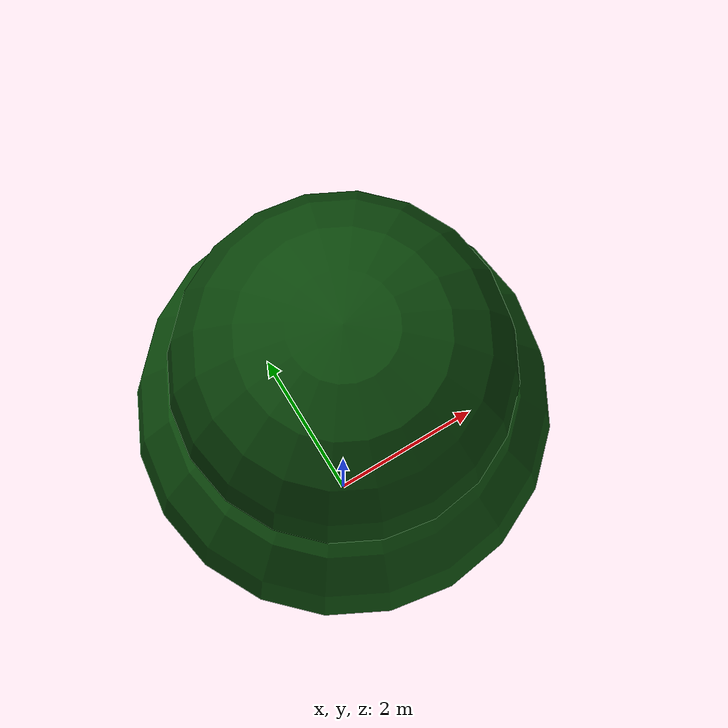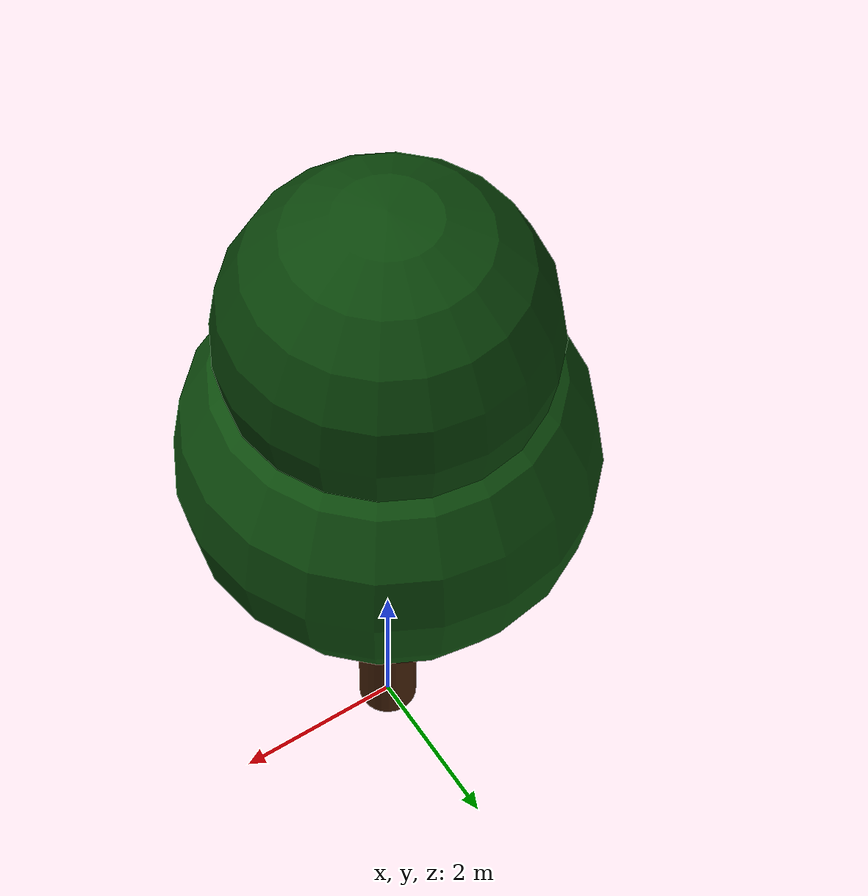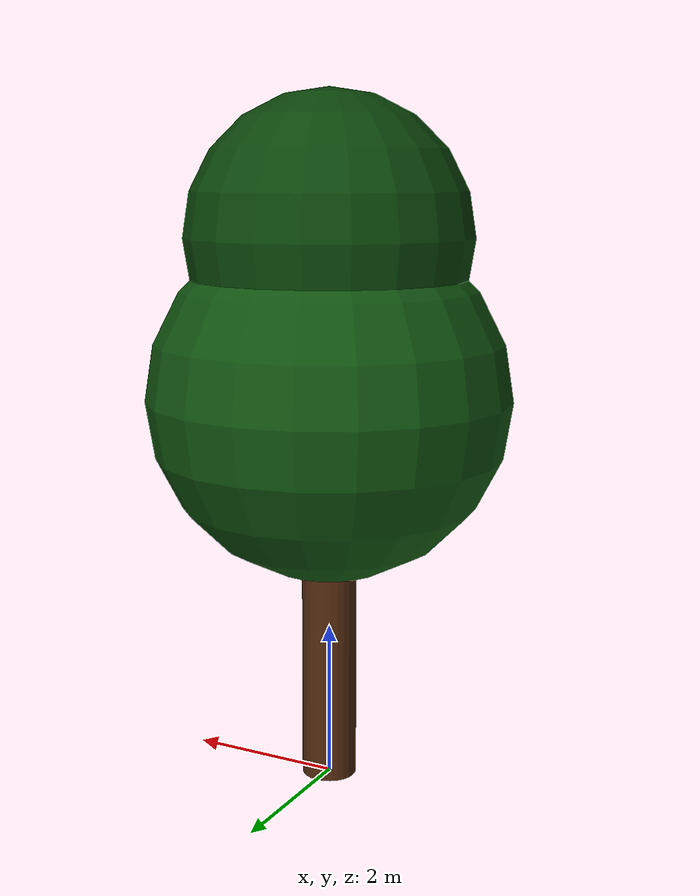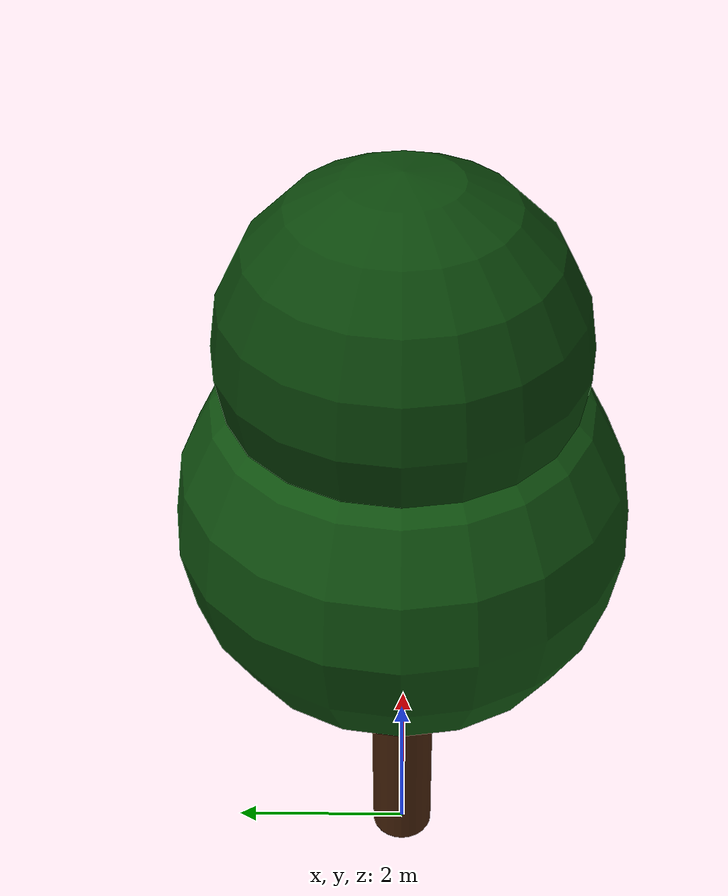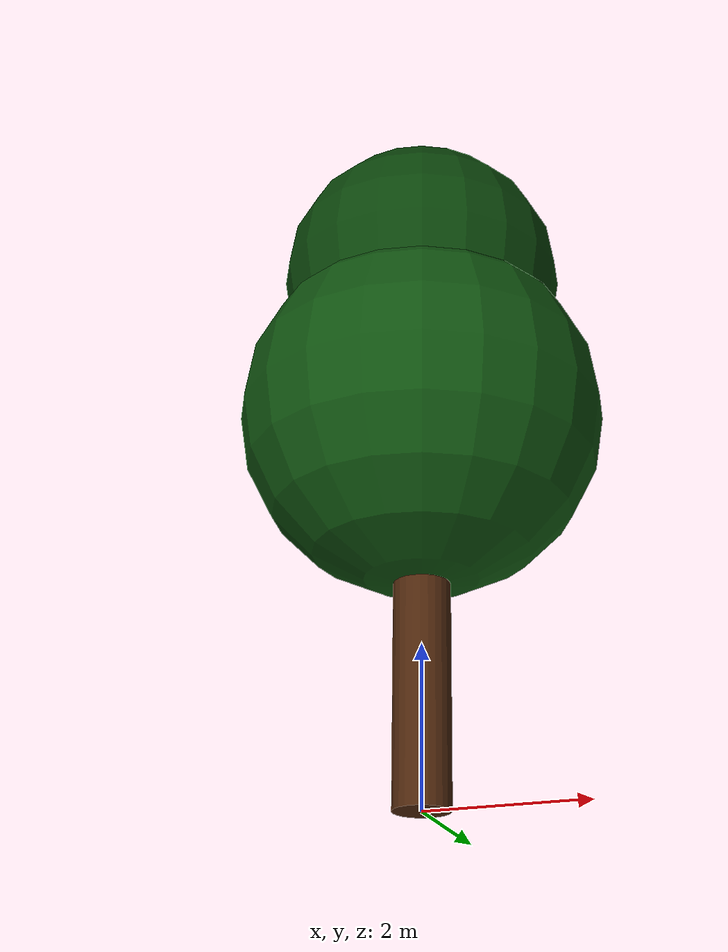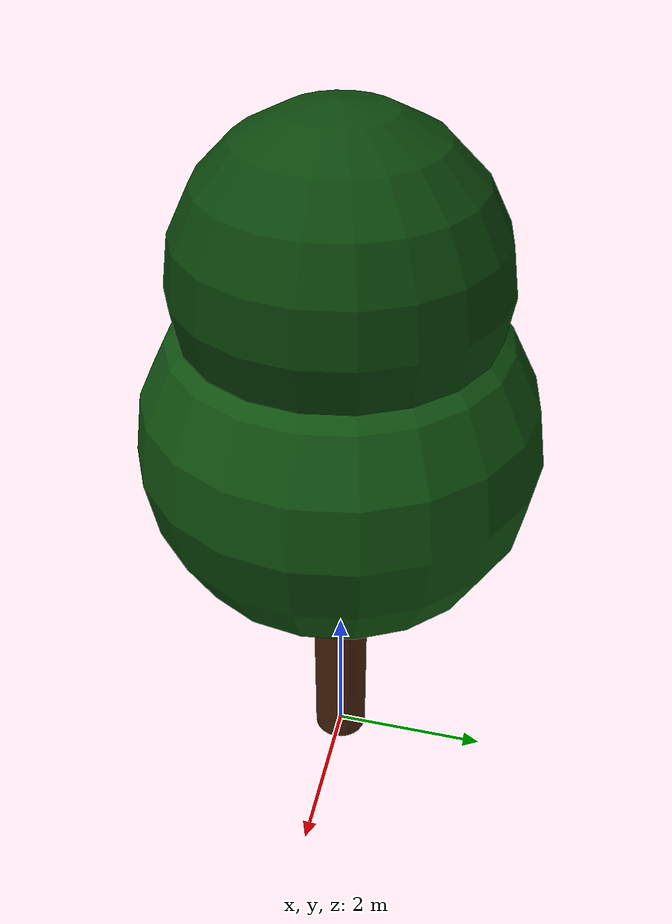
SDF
<?xml version="1.0"?>

<sdf version="1.9">

  <model name="tree">

    <static>true</static>

    <!-- Trunk                                              -->

    <link name="trunk">

      <pose>0 0 2.0 0 0 0</pose>

      <visual name="trunk_visual">

        <geometry>
          <cylinder>
            <radius>0.35</radius>
            <length>4.0</length>
          </cylinder>
        </geometry>

        <material>
          <ambient>0.20 0.10 0.04 1</ambient>
          <diffuse>0.30 0.15 0.05 1</diffuse>
          <specular>0.02 0.02 0.02 1</specular>
        </material>

      </visual>

    </link>

    <!-- Lower Foliage                                      -->

    <link name="lower_foliage">

      <pose>0 0 5.0 0 0 0</pose>

      <visual name="lower_foliage_visual">

        <geometry>
          <sphere>
            <radius>2.3</radius>
          </sphere>
        </geometry>

        <material>
          <ambient>0.04 0.20 0.04 1</ambient>
          <diffuse>0.06 0.32 0.06 1</diffuse>
          <specular>0.01 0.01 0.01 1</specular>
        </material>

      </visual>

    </link>

    <!-- Upper Foliage                                      -->

    <link name="upper_foliage">

      <pose>0 0 7.0 0 0 0</pose>

      <visual name="upper_foliage_visual">

        <geometry>
          <sphere>
            <radius>1.8</radius>
          </sphere>
        </geometry>

        <material>
          <ambient>0.03 0.16 0.03 1</ambient>
          <diffuse>0.04 0.27 0.04 1</diffuse>
          <specular>0.01 0.01 0.01 1</specular>
        </material>

      </visual>

    </link>

  </model>

</sdf>
